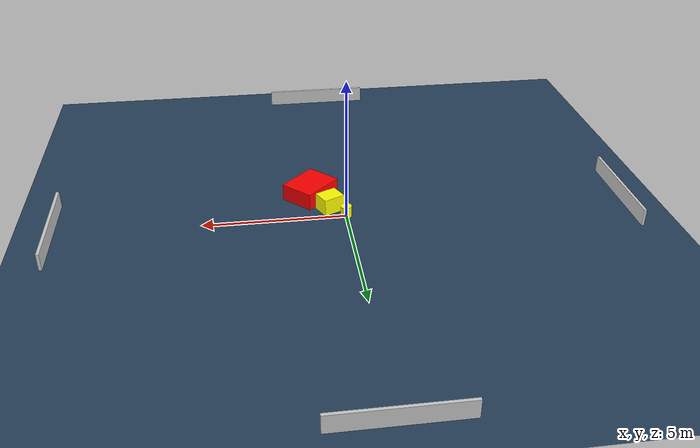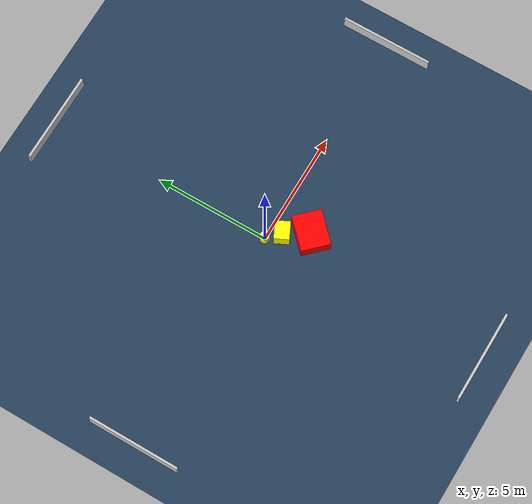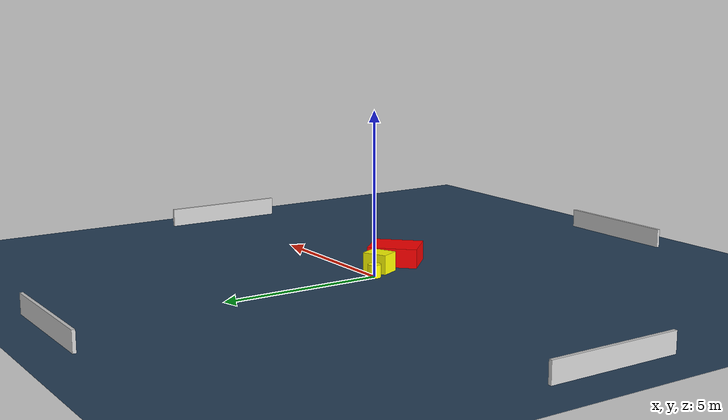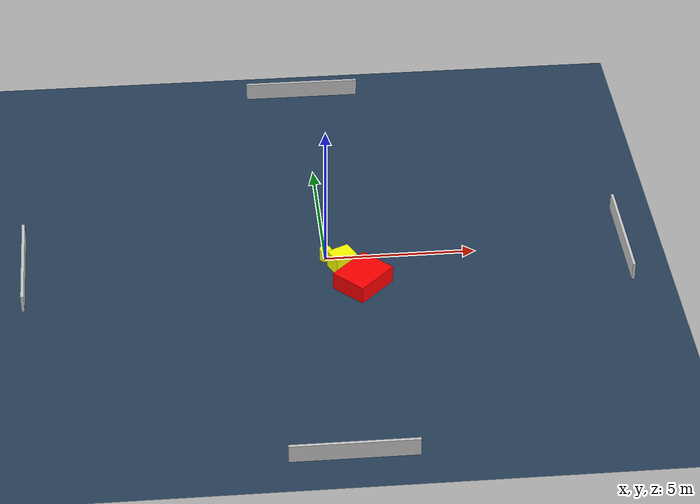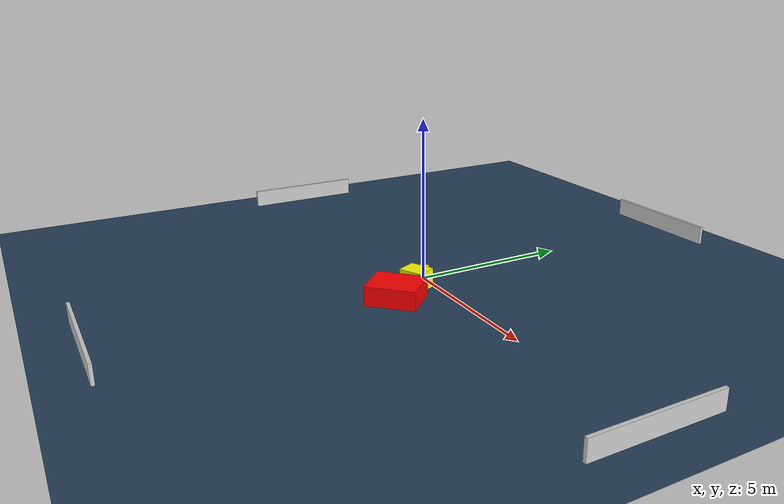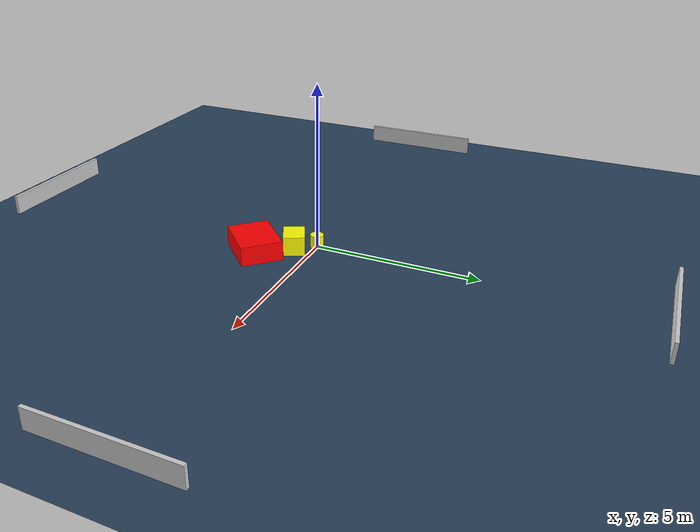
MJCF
<?xml version="1.0" ?>
<mujoco model="generated_environment">
  <option timestep="0.01" integrator="RK4" cone="elliptic"/>
  <default>
    <geom density="1"/>
  </default>
  <asset>
    <texture builtin="gradient" height="3072" name="skybox" rgb1="0.3 0.5 0.7" rgb2="0 0 0" type="skybox" width="512"/>
    <texture builtin="checker" height="300" name="groundplane" rgb1="0.2 0.3 0.4" rgb2="0.1 0.2 0.3" type="2d" width="300"/>
    <material name="groundplane" reflectance="0.2" texrepeat="5 5" texture="groundplane"/>
  </asset>
  <worldbody>
    <light dir="0 0 -1" directional="true" pos="0 0 1.5"/>
    <geom condim="3" friction="0.5 0.005 0.001" material="groundplane" name="floor" pos="0 0 0" size="0 0 0.05" type="plane"/>
    <body name="walls">
      <geom name="wall_1" condim="4" pos="-10.0 0.0 0.3" rgba="0.800000011920929 0.800000011920929 0.800000011920929 1.0" size="0.05 2.0 0.3" type="box"/>
      <geom name="wall_2" condim="4" pos="10.0 0.0 0.3" rgba="0.800000011920929 0.800000011920929 0.800000011920929 1.0" size="0.05 2.0 0.3" type="box"/>
      <geom name="wall_3" condim="4" pos="0.0 -10.0 0.3" rgba="0.800000011920929 0.800000011920929 0.800000011920929 1.0" size="2.0 0.05 0.3" type="box"/>
      <geom name="wall_4" condim="4" pos="0.0 10.0 0.3" rgba="0.800000011920929 0.800000011920929 0.800000011920929 1.0" size="2.0 0.05 0.3" type="box"/>
    </body>
    <body name="robot">
      <joint name="joint_x" type="slide" pos="0 0 0" axis="1 0 0"/>
      <joint name="joint_y" type="slide" pos="0 0 0" axis="0 1 0"/>
      <geom name="robot" type="cylinder" pos="0.0 0.0 0.2" size="0.2 0.2 0.0" mass="5.0" friction="1.0 0.005 0.0001" condim="4" rgba="1.0 1.0 0.0 1.0"/>
    </body>
    <body name="obstacle_1_movable">
      <geom name="obstacle_1_movable" condim="4" pos="0.5070481853361085 -0.520159382750336 0.3" euler="0 0 205.8929423961934" friction="0.0 0.005 0.001" rgba="1.0 1.0 0.0 1.0" size="0.3925135901944866 0.3203252068409562 0.3" type="box" mass="0.1"/>
      <joint type="free"/>
    </body>
    <body name="obstacle_2_static">
      <geom name="obstacle_2_static" condim="4" pos="1.1002462811094476 -1.5299486183175501 0.3" euler="0 0 224.72807588697992" friction="0.0 0.005 0.001" rgba="1.0 0.0 0.0 1.0" size="0.7775205615303729 0.6286479959170722 0.3" type="box"/>
    </body>
  </worldbody>
  <actuator>
    <motor name="actuator_x" joint="joint_x" gear="1" ctrlrange="-1 1"/>
    <motor name="actuator_y" joint="joint_y" gear="1" ctrlrange="-1 1"/>
  </actuator>
</mujoco>
